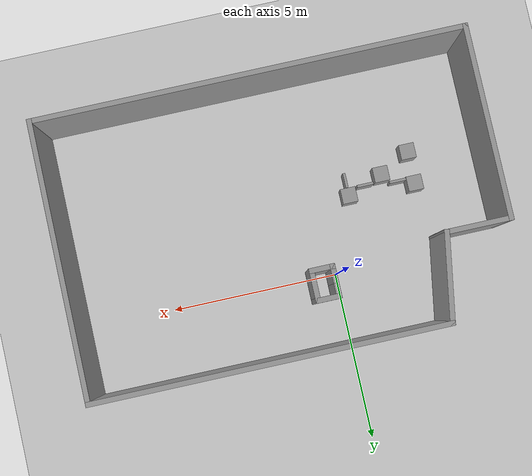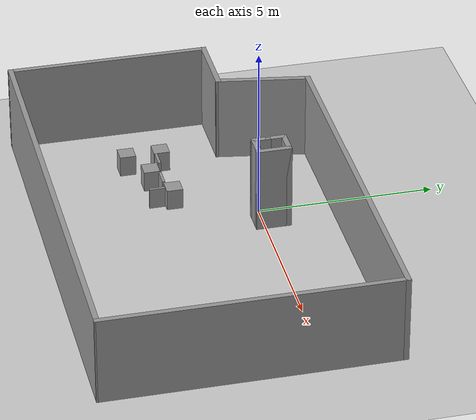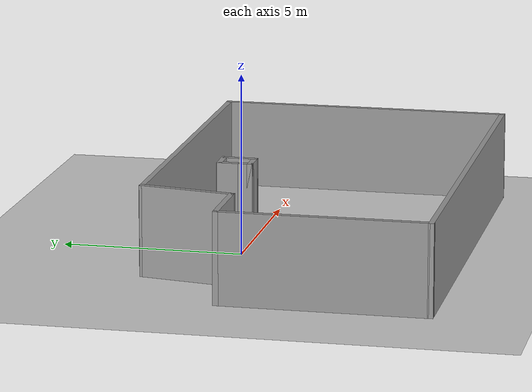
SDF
<sdf version="1.7">
 <world name="default">
  <model name="ground_plane">
   <static>1</static>
   <link name="link">
    <collision name="collision">
     <geometry><plane><normal>0 0 1</normal><size>100 100</size></plane></geometry>
     <surface>
      <contact><collide_bitmask>65535</collide_bitmask></contact>
      <friction><ode><mu>100</mu><mu2>50</mu2></ode></friction>
     </surface>
    </collision>
    <visual name="visual">
     <cast_shadows>0</cast_shadows>
     <geometry><plane><normal>0 0 1</normal><size>100 100</size></plane></geometry>
     <material>
      <script><uri>file://media/materials/scripts/gazebo.material</uri><name>Gazebo/Grey</name></script>
     </material>
    </visual>
   </link>
  </model>
  <model name="lab211_1">
   <pose>1.34834 -1.97187 0 0 -0 0</pose>
   <link name="Wall_12">
    <collision name="Wall_12_Collision">
     <geometry><box><size>8.25 0.15 2.5</size></box></geometry>
     <pose>0 0 1.25 0 -0 0</pose>
    </collision>
    <visual name="Wall_12_Visual">
     <pose>0 0 1.25 0 -0 0</pose>
     <geometry><box><size>8.25 0.15 2.5</size></box></geometry>
     <material>
      <script><uri>file://media/materials/scripts/gazebo.material</uri><name>Gazebo/Grey</name></script>
      <ambient>1 1 1 1</ambient>
     </material>
     <meta><layer>0</layer></meta>
    </visual>
    <pose>6.31146 3.1e-05 0 0 -0 1.5708</pose>
   </link>
   <link name="Wall_13">
    <collision name="Wall_13_Collision">
     <geometry><box><size>10.5 0.15 2.5</size></box></geometry>
     <pose>0 0 1.25 0 -0 0</pose>
    </collision>
    <visual name="Wall_13_Visual">
     <pose>0 0 1.25 0 -0 0</pose>
     <geometry><box><size>10.5 0.15 2.5</size></box></geometry>
     <material>
      <script><uri>file://media/materials/scripts/gazebo.material</uri><name>Gazebo/Grey</name></script>
      <ambient>1 1 1 1</ambient>
     </material>
     <meta><layer>0</layer></meta>
    </visual>
    <pose>1.13646 4.05003 0 0 -0 3.14159</pose>
   </link>
   <link name="Wall_16">
    <collision name="Wall_16_Collision">
     <geometry><box><size>5.75 0.15 2.5</size></box></geometry>
     <pose>0 0 1.25 0 -0 0</pose>
    </collision>
    <visual name="Wall_16_Visual">
     <pose>0 0 1.25 0 -0 0</pose>
     <geometry><box><size>5.75 0.15 2.5</size></box></geometry>
     <material>
      <script><uri>file://media/materials/scripts/gazebo.material</uri><name>Gazebo/Grey</name></script>
      <ambient>1 1 1 1</ambient>
     </material>
     <meta><layer>0</layer></meta>
    </visual>
    <pose>-6.31147 -1.26138 0 0 -0 -1.5708</pose>
   </link>
   <link name="Wall_18">
    <collision name="Wall_18_Collision">
     <geometry><box><size>12.7729 0.15 2.5</size></box></geometry>
     <pose>0 0 1.25 0 -0 0</pose>
    </collision>
    <visual name="Wall_18_Visual">
     <pose>0 0 1.25 0 -0 0</pose>
     <geometry><box><size>12.7729 0.15 2.5</size></box></geometry>
     <material>
      <script><uri>file://media/materials/scripts/gazebo.material</uri><name>Gazebo/Grey</name></script>
      <ambient>1 1 1 1</ambient>
     </material>
     <meta><layer>0</layer></meta>
    </visual>
    <pose>-0 -4.05567 0 0 -0 0.000904</pose>
   </link>
   <link name="Wall_20">
    <collision name="Wall_20_Collision">
     <geometry><box><size>2 0.15 2.5</size></box></geometry>
     <pose>0 0 1.25 0 -0 0</pose>
    </collision>
    <visual name="Wall_20_Visual">
     <pose>0 0 1.25 0 -0 0</pose>
     <geometry><box><size>2 0.15 2.5</size></box></geometry>
     <material>
      <script><uri>file://media/materials/scripts/gazebo.material</uri><name>Gazebo/Grey</name></script>
      <ambient>1 1 1 1</ambient>
     </material>
     <meta><layer>0</layer></meta>
    </visual>
    <pose>-5.38647 1.53862 0 0 -0 0</pose>
   </link>
   <link name="Wall_21">
    <collision name="Wall_21_Collision">
     <geometry><box><size>2.69677 0.15 2.5</size></box></geometry>
     <pose>0 0 1.25 0 -0 0</pose>
    </collision>
    <visual name="Wall_21_Visual">
     <pose>0 0 1.25 0 -0 0</pose>
     <geometry><box><size>2.69677 0.15 2.5</size></box></geometry>
     <material>
      <script><uri>file://media/materials/scripts/gazebo.material</uri><name>Gazebo/Grey</name></script>
      <ambient>1 1 1 1</ambient>
     </material>
     <meta><layer>0</layer></meta>
    </visual>
    <pose>-4.25 2.79433 0 0 -0 1.40396</pose>
   </link>
   <static>1</static>
  </model>
  <model name="lab211_piller">
   <pose>0.447124 0.232964 0 0 -0 0</pose>
   <link name="Wall_28">
    <collision name="Wall_28_Collision">
     <geometry><box><size>0.5532 0.15 2.5</size></box></geometry>
     <pose>0 0 1.25 0 -0 0</pose>
    </collision>
    <visual name="Wall_28_Visual">
     <pose>0 0 1.25 0 -0 0</pose>
     <geometry><box><size>0.5532 0.15 2.5</size></box></geometry>
     <material>
      <script><uri>file://media/materials/scripts/gazebo.material</uri><name>Gazebo/Grey</name></script>
      <ambient>1 1 1 1</ambient>
     </material>
     <meta><layer>0</layer></meta>
    </visual>
    <pose>-0.227876 -0.2234 0 0 -0 -1.5708</pose>
   </link>
   <link name="Wall_29">
    <collision name="Wall_29_Collision">
     <geometry><box><size>0.75 0.15 2.5</size></box></geometry>
     <pose>0 0 1.25 0 -0 0</pose>
    </collision>
    <visual name="Wall_29_Visual">
     <pose>0 0 1.25 0 -0 0</pose>
     <geometry><box><size>0.75 0.15 2.5</size></box></geometry>
     <material>
      <script><uri>file://media/materials/scripts/gazebo.material</uri><name>Gazebo/Grey</name></script>
      <ambient>1 1 1 1</ambient>
     </material>
     <meta><layer>0</layer></meta>
    </visual>
    <pose>0.072124 -0.425 0 0 -0 0</pose>
   </link>
   <link name="Wall_30">
    <collision name="Wall_30_Collision">
     <geometry><box><size>1 0.15 2.5</size></box></geometry>
     <pose>0 0 1.25 0 -0 0</pose>
    </collision>
    <visual name="Wall_30_Visual">
     <pose>0 0 1.25 0 -0 0</pose>
     <geometry><box><size>1 0.15 2.5</size></box></geometry>
     <material>
      <script><uri>file://media/materials/scripts/gazebo.material</uri><name>Gazebo/Grey</name></script>
      <ambient>1 1 1 1</ambient>
     </material>
     <meta><layer>0</layer></meta>
    </visual>
    <pose>0.372124 -0 0 0 -0 1.5708</pose>
   </link>
   <link name="Wall_31">
    <collision name="Wall_31_Collision">
     <geometry><box><size>0.75 0.15 2.5</size></box></geometry>
     <pose>0 0 1.25 0 -0 0</pose>
    </collision>
    <visual name="Wall_31_Visual">
     <pose>0 0 1.25 0 -0 0</pose>
     <geometry><box><size>0.75 0.15 2.5</size></box></geometry>
     <material>
      <script><uri>file://media/materials/scripts/gazebo.material</uri><name>Gazebo/Grey</name></script>
      <ambient>1 1 1 1</ambient>
     </material>
     <meta><layer>0</layer></meta>
    </visual>
    <pose>0.072124 0.425 0 0 -0 3.14159</pose>
   </link>
   <link name="Wall_32">
    <collision name="Wall_32_Collision">
     <geometry><box><size>0.5968 0.15 2.5</size></box></geometry>
     <pose>0 0 1.25 0 -0 0</pose>
    </collision>
    <visual name="Wall_32_Visual">
     <pose>0 0 1.25 0 -0 0</pose>
     <geometry><box><size>0.5968 0.15 2.5</size></box></geometry>
     <material>
      <script><uri>file://media/materials/scripts/gazebo.material</uri><name>Gazebo/Grey</name></script>
      <ambient>1 1 1 1</ambient>
     </material>
     <meta><layer>0</layer></meta>
    </visual>
    <pose>-0.227876 0.2016 0 0 -0 -1.5708</pose>
   </link>
   <static>1</static>
  </model>
  <model name="lab_box">
   <link name="link">
    <inertial>
     <mass>1</mass>
     <inertia>
      <ixx>0.166667</ixx>
      <ixy>0</ixy>
      <ixz>0</ixz>
      <iyy>0.166667</iyy>
      <iyz>0</iyz>
      <izz>0.166667</izz>
     </inertia>
    </inertial>
    <visual name="visual">
     <geometry><box><size>0.457 0.457 0.609</size></box></geometry>
     <material>
      <script><name>Gazebo/Grey</name><uri>file://media/materials/scripts/gazebo.material</uri></script>
      <shader type="pixel"><normal_map>__default__</normal_map></shader>
      <ambient>0.3 0.3 0.3 1</ambient>
      <diffuse>0.7 0.7 0.7 1</diffuse>
      <specular>0.01 0.01 0.01 1</specular>
      <emissive>0 0 0 1</emissive>
     </material>
    </visual>
    <collision name="collision">
     <geometry><box><size>0.457 0.457 0.609</size></box></geometry>
     <surface>
      <friction>
       <ode><mu>1</mu><mu2>1</mu2><fdir1>0 0 0</fdir1><slip1>0</slip1><slip2>0</slip2></ode>
       <torsional>
        <coefficient>1</coefficient>
        <patch_radius>0</patch_radius>
        <surface_radius>0</surface_radius>
        <use_patch_radius>1</use_patch_radius>
        <ode><slip>0</slip></ode>
       </torsional>
      </friction>
      <bounce><restitution_coefficient>0</restitution_coefficient><threshold>1e+06</threshold></bounce>
      <contact>
       <collide_without_contact>0</collide_without_contact>
       <collide_without_contact_bitmask>1</collide_without_contact_bitmask>
       <collide_bitmask>1</collide_bitmask>
       <ode>
        <soft_cfm>0</soft_cfm>
        <soft_erp>0.2</soft_erp>
        <kp>1e+13</kp>
        <kd>1</kd>
        <max_vel>0.01</max_vel>
        <min_depth>0</min_depth>
       </ode>
       <bullet>
        <split_impulse>1</split_impulse>
        <split_impulse_penetration_threshold>-0.01</split_impulse_penetration_threshold>
        <soft_cfm>0</soft_cfm>
        <soft_erp>0.2</soft_erp>
        <kp>1e+13</kp>
        <kd>1</kd>
       </bullet>
      </contact>
     </surface>
    </collision>
   </link>
   <static>0</static>
   <pose>-1.95932 -2.64808 0.3045 0 -0 0</pose>
  </model>
  <model name="lab_box_clone_0_clone">
   <link name="link">
    <inertial>
     <mass>1</mass>
     <inertia>
      <ixx>0.166667</ixx>
      <ixy>0</ixy>
      <ixz>0</ixz>
      <iyy>0.166667</iyy>
      <iyz>0</iyz>
      <izz>0.166667</izz>
     </inertia>
    </inertial>
    <visual name="visual">
     <geometry><box><size>0.457 0.457 0.609</size></box></geometry>
     <material>
      <script><name>Gazebo/Grey</name><uri>file://media/materials/scripts/gazebo.material</uri></script>
      <shader type="pixel"><normal_map>__default__</normal_map></shader>
      <ambient>0.3 0.3 0.3 1</ambient>
      <diffuse>0.7 0.7 0.7 1</diffuse>
      <specular>0.01 0.01 0.01 1</specular>
      <emissive>0 0 0 1</emissive>
     </material>
    </visual>
    <collision name="collision">
     <geometry><box><size>0.457 0.457 0.609</size></box></geometry>
     <surface>
      <friction>
       <ode><mu>1</mu><mu2>1</mu2><fdir1>0 0 0</fdir1><slip1>0</slip1><slip2>0</slip2></ode>
       <torsional>
        <coefficient>1</coefficient>
        <patch_radius>0</patch_radius>
        <surface_radius>0</surface_radius>
        <use_patch_radius>1</use_patch_radius>
        <ode><slip>0</slip></ode>
       </torsional>
      </friction>
      <bounce><restitution_coefficient>0</restitution_coefficient><threshold>1e+06</threshold></bounce>
      <contact>
       <collide_without_contact>0</collide_without_contact>
       <collide_without_contact_bitmask>1</collide_without_contact_bitmask>
       <collide_bitmask>1</collide_bitmask>
       <ode>
        <soft_cfm>0</soft_cfm>
        <soft_erp>0.2</soft_erp>
        <kp>1e+13</kp>
        <kd>1</kd>
        <max_vel>0.01</max_vel>
        <min_depth>0</min_depth>
       </ode>
       <bullet>
        <split_impulse>1</split_impulse>
        <split_impulse_penetration_threshold>-0.01</split_impulse_penetration_threshold>
        <soft_cfm>0</soft_cfm>
        <soft_erp>0.2</soft_erp>
        <kp>1e+13</kp>
        <kd>1</kd>
       </bullet>
      </contact>
     </surface>
    </collision>
   </link>
   <static>0</static>
   <pose>-2.89257 -2.17117 0.3045 0 -0 0</pose>
  </model>
  <model name="lab_box_clone_0_clone_0">
   <link name="link">
    <inertial>
     <mass>1</mass>
     <inertia>
      <ixx>0.166667</ixx>
      <ixy>0</ixy>
      <ixz>0</ixz>
      <iyy>0.166667</iyy>
      <iyz>0</iyz>
      <izz>0.166667</izz>
     </inertia>
    </inertial>
    <visual name="visual">
     <geometry><box><size>0.457 0.457 0.609</size></box></geometry>
     <material>
      <script><name>Gazebo/Grey</name><uri>file://media/materials/scripts/gazebo.material</uri></script>
      <shader type="pixel"><normal_map>__default__</normal_map></shader>
      <ambient>0.3 0.3 0.3 1</ambient>
      <diffuse>0.7 0.7 0.7 1</diffuse>
      <specular>0.01 0.01 0.01 1</specular>
      <emissive>0 0 0 1</emissive>
     </material>
    </visual>
    <collision name="collision">
     <geometry><box><size>0.457 0.457 0.609</size></box></geometry>
     <surface>
      <friction>
       <ode><mu>1</mu><mu2>1</mu2><fdir1>0 0 0</fdir1><slip1>0</slip1><slip2>0</slip2></ode>
       <torsional>
        <coefficient>1</coefficient>
        <patch_radius>0</patch_radius>
        <surface_radius>0</surface_radius>
        <use_patch_radius>1</use_patch_radius>
        <ode><slip>0</slip></ode>
       </torsional>
      </friction>
      <bounce><restitution_coefficient>0</restitution_coefficient><threshold>1e+06</threshold></bounce>
      <contact>
       <collide_without_contact>0</collide_without_contact>
       <collide_without_contact_bitmask>1</collide_without_contact_bitmask>
       <collide_bitmask>1</collide_bitmask>
       <ode>
        <soft_cfm>0</soft_cfm>
        <soft_erp>0.2</soft_erp>
        <kp>1e+13</kp>
        <kd>1</kd>
        <max_vel>0.01</max_vel>
        <min_depth>0</min_depth>
       </ode>
       <bullet>
        <split_impulse>1</split_impulse>
        <split_impulse_penetration_threshold>-0.01</split_impulse_penetration_threshold>
        <soft_cfm>0</soft_cfm>
        <soft_erp>0.2</soft_erp>
        <kp>1e+13</kp>
        <kd>1</kd>
       </bullet>
      </contact>
     </surface>
    </collision>
   </link>
   <static>0</static>
   <pose>-2.88992 -3.14757 0.3045 0 -0 0</pose>
  </model>
  <model name="lab_box_clone_0_clone_1_clone">
   <link name="link">
    <inertial>
     <mass>1</mass>
     <inertia>
      <ixx>0.166667</ixx>
      <ixy>0</ixy>
      <ixz>0</ixz>
      <iyy>0.166667</iyy>
      <iyz>0</iyz>
      <izz>0.166667</izz>
     </inertia>
    </inertial>
    <visual name="visual">
     <geometry><box><size>0.457 0.457 0.609</size></box></geometry>
     <material>
      <script><name>Gazebo/Grey</name><uri>file://media/materials/scripts/gazebo.material</uri></script>
      <shader type="pixel"><normal_map>__default__</normal_map></shader>
      <ambient>0.3 0.3 0.3 1</ambient>
      <diffuse>0.7 0.7 0.7 1</diffuse>
      <specular>0.01 0.01 0.01 1</specular>
      <emissive>0 0 0 1</emissive>
     </material>
    </visual>
    <collision name="collision">
     <geometry><box><size>0.457 0.457 0.609</size></box></geometry>
     <surface>
      <friction>
       <ode><mu>1</mu><mu2>1</mu2><fdir1>0 0 0</fdir1><slip1>0</slip1><slip2>0</slip2></ode>
       <torsional>
        <coefficient>1</coefficient>
        <patch_radius>0</patch_radius>
        <surface_radius>0</surface_radius>
        <use_patch_radius>1</use_patch_radius>
        <ode><slip>0</slip></ode>
       </torsional>
      </friction>
      <bounce><restitution_coefficient>0</restitution_coefficient><threshold>1e+06</threshold></bounce>
      <contact>
       <collide_without_contact>0</collide_without_contact>
       <collide_without_contact_bitmask>1</collide_without_contact_bitmask>
       <collide_bitmask>1</collide_bitmask>
       <ode>
        <soft_cfm>0</soft_cfm>
        <soft_erp>0.2</soft_erp>
        <kp>1e+13</kp>
        <kd>1</kd>
        <max_vel>0.01</max_vel>
        <min_depth>0</min_depth>
       </ode>
       <bullet>
        <split_impulse>1</split_impulse>
        <split_impulse_penetration_threshold>-0.01</split_impulse_penetration_threshold>
        <soft_cfm>0</soft_cfm>
        <soft_erp>0.2</soft_erp>
        <kp>1e+13</kp>
        <kd>1</kd>
       </bullet>
      </contact>
     </surface>
    </collision>
   </link>
   <static>0</static>
   <pose>-0.881511 -2.22693 0.3045 0 -0 0</pose>
  </model>
  <model name="lab_box_clone_0_clone_1_clone_0_clone_clone">
   <link name="link">
    <inertial>
     <mass>1</mass>
     <inertia>
      <ixx>0.166667</ixx>
      <ixy>0</ixy>
      <ixz>0</ixz>
      <iyy>0.166667</iyy>
      <iyz>0</iyz>
      <izz>0.166667</izz>
     </inertia>
    </inertial>
    <visual name="visual">
     <geometry><box><size>0.49868 0.07691 0.609</size></box></geometry>
     <material>
      <script><name>Gazebo/Grey</name><uri>file://media/materials/scripts/gazebo.material</uri></script>
      <shader type="pixel"><normal_map>__default__</normal_map></shader>
      <ambient>0.3 0.3 0.3 1</ambient>
      <diffuse>0.7 0.7 0.7 1</diffuse>
      <specular>0.01 0.01 0.01 1</specular>
      <emissive>0 0 0 1</emissive>
     </material>
    </visual>
    <collision name="collision">
     <geometry><box><size>0.49868 0.07691 0.609</size></box></geometry>
     <surface>
      <friction>
       <ode><mu>1</mu><mu2>1</mu2><fdir1>0 0 0</fdir1><slip1>0</slip1><slip2>0</slip2></ode>
       <torsional>
        <coefficient>1</coefficient>
        <patch_radius>0</patch_radius>
        <surface_radius>0</surface_radius>
        <use_patch_radius>1</use_patch_radius>
        <ode><slip>0</slip></ode>
       </torsional>
      </friction>
      <bounce><restitution_coefficient>0</restitution_coefficient><threshold>1e+06</threshold></bounce>
      <contact>
       <collide_without_contact>0</collide_without_contact>
       <collide_without_contact_bitmask>1</collide_without_contact_bitmask>
       <collide_bitmask>1</collide_bitmask>
       <ode>
        <soft_cfm>0</soft_cfm>
        <soft_erp>0.2</soft_erp>
        <kp>1e+13</kp>
        <kd>1</kd>
        <max_vel>0.01</max_vel>
        <min_depth>0</min_depth>
       </ode>
       <bullet>
        <split_impulse>1</split_impulse>
        <split_impulse_penetration_threshold>-0.01</split_impulse_penetration_threshold>
        <soft_cfm>0</soft_cfm>
        <soft_erp>0.2</soft_erp>
        <kp>1e+13</kp>
        <kd>1</kd>
       </bullet>
      </contact>
     </surface>
    </collision>
   </link>
   <static>0</static>
   <pose>-2.40698 -2.34212 0.304487 0 -8e-06 -2e-05</pose>
  </model>
  <model name="lab_box_clone_0_clone_1_clone_0_clone_clone_0">
   <link name="link">
    <inertial>
     <mass>1</mass>
     <inertia>
      <ixx>0.166667</ixx>
      <ixy>0</ixy>
      <ixz>0</ixz>
      <iyy>0.166667</iyy>
      <iyz>0</iyz>
      <izz>0.166667</izz>
     </inertia>
    </inertial>
    <visual name="visual">
     <geometry><box><size>0.49868 0.07691 0.609</size></box></geometry>
     <material>
      <script><name>Gazebo/Grey</name><uri>file://media/materials/scripts/gazebo.material</uri></script>
      <shader type="pixel"><normal_map>__default__</normal_map></shader>
      <ambient>0.3 0.3 0.3 1</ambient>
      <diffuse>0.7 0.7 0.7 1</diffuse>
      <specular>0.01 0.01 0.01 1</specular>
      <emissive>0 0 0 1</emissive>
     </material>
    </visual>
    <collision name="collision">
     <geometry><box><size>0.49868 0.07691 0.609</size></box></geometry>
     <surface>
      <friction>
       <ode><mu>1</mu><mu2>1</mu2><fdir1>0 0 0</fdir1><slip1>0</slip1><slip2>0</slip2></ode>
       <torsional>
        <coefficient>1</coefficient>
        <patch_radius>0</patch_radius>
        <surface_radius>0</surface_radius>
        <use_patch_radius>1</use_patch_radius>
        <ode><slip>0</slip></ode>
       </torsional>
      </friction>
      <bounce><restitution_coefficient>0</restitution_coefficient><threshold>1e+06</threshold></bounce>
      <contact>
       <collide_without_contact>0</collide_without_contact>
       <collide_without_contact_bitmask>1</collide_without_contact_bitmask>
       <collide_bitmask>1</collide_bitmask>
       <ode>
        <soft_cfm>0</soft_cfm>
        <soft_erp>0.2</soft_erp>
        <kp>1e+13</kp>
        <kd>1</kd>
        <max_vel>0.01</max_vel>
        <min_depth>0</min_depth>
       </ode>
       <bullet>
        <split_impulse>1</split_impulse>
        <split_impulse_penetration_threshold>-0.01</split_impulse_penetration_threshold>
        <soft_cfm>0</soft_cfm>
        <soft_erp>0.2</soft_erp>
        <kp>1e+13</kp>
        <kd>1</kd>
       </bullet>
      </contact>
     </surface>
    </collision>
   </link>
   <static>0</static>
   <pose>-1.42529 -2.43463 0.304487 0 -8e-06 -2e-05</pose>
  </model>
  <model name="lab_box_clone_0_clone_1_clone_0_clone_clone_0_clone">
   <link name="link">
    <inertial>
     <mass>1</mass>
     <inertia>
      <ixx>0.166667</ixx>
      <ixy>0</ixy>
      <ixz>0</ixz>
      <iyy>0.166667</iyy>
      <iyz>0</iyz>
      <izz>0.166667</izz>
     </inertia>
    </inertial>
    <visual name="visual">
     <geometry><box><size>0.43955 0.07691 0.609</size></box></geometry>
     <material>
      <script><name>Gazebo/Grey</name><uri>file://media/materials/scripts/gazebo.material</uri></script>
      <shader type="pixel"><normal_map>__default__</normal_map></shader>
      <ambient>0.3 0.3 0.3 1</ambient>
      <diffuse>0.7 0.7 0.7 1</diffuse>
      <specular>0.01 0.01 0.01 1</specular>
      <emissive>0 0 0 1</emissive>
     </material>
    </visual>
    <collision name="collision">
     <geometry><box><size>0.43955 0.07691 0.609</size></box></geometry>
     <surface>
      <friction>
       <ode><mu>1</mu><mu2>1</mu2><fdir1>0 0 0</fdir1><slip1>0</slip1><slip2>0</slip2></ode>
       <torsional>
        <coefficient>1</coefficient>
        <patch_radius>0</patch_radius>
        <surface_radius>0</surface_radius>
        <use_patch_radius>1</use_patch_radius>
        <ode><slip>0</slip></ode>
       </torsional>
      </friction>
      <bounce><restitution_coefficient>0</restitution_coefficient><threshold>1e+06</threshold></bounce>
      <contact>
       <collide_without_contact>0</collide_without_contact>
       <collide_without_contact_bitmask>1</collide_without_contact_bitmask>
       <collide_bitmask>1</collide_bitmask>
       <ode>
        <soft_cfm>0</soft_cfm>
        <soft_erp>0.2</soft_erp>
        <kp>1e+13</kp>
        <kd>1</kd>
        <max_vel>0.01</max_vel>
        <min_depth>0</min_depth>
       </ode>
       <bullet>
        <split_impulse>1</split_impulse>
        <split_impulse_penetration_threshold>-0.01</split_impulse_penetration_threshold>
        <soft_cfm>0</soft_cfm>
        <soft_erp>0.2</soft_erp>
        <kp>1e+13</kp>
        <kd>1</kd>
       </bullet>
      </contact>
     </surface>
    </collision>
   </link>
   <static>0</static>
   <pose>-0.872546 -2.68974 0.304493 -8e-06 -0 1.58103</pose>
  </model>
 </world>
</sdf>
